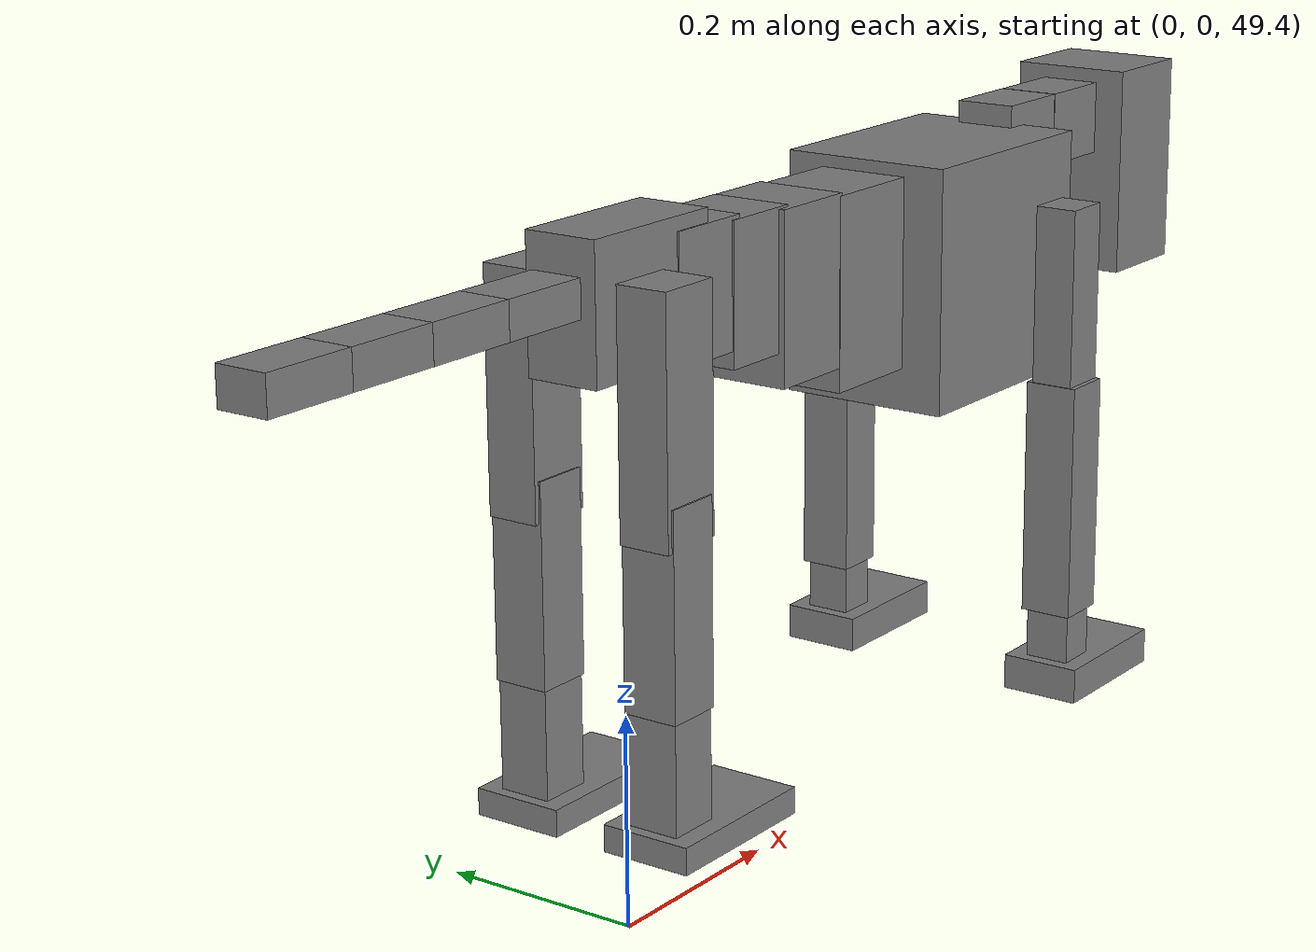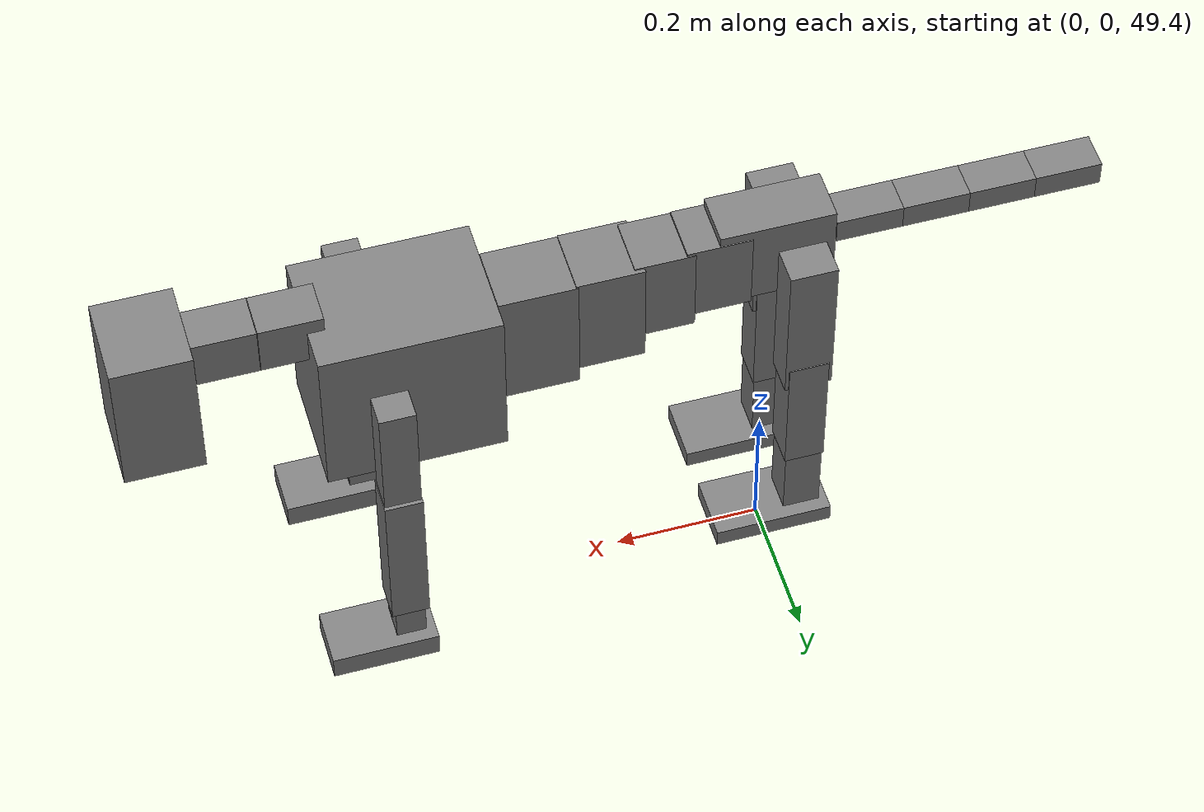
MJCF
<mujoco model="dog">

    <default>
        <joint armature="0.02" stiffness="1" damping="0.2" limited="true"/>
        <geom condim="3" friction="1 0.05 0.05" margin="0.01"/>
        <motor ctrllimited="true" ctrlrange="-1.0 1.0" forcelimited="true" gear="50"/>
    </default>

    <compiler inertiafromgeom="true" angle="radian"/>

    <option timestep="0.016" iterations="50" tolerance="1e-10" solver="Newton" jacobian="dense" cone="pyramidal"/>

    <size nconmax="20000" njmax="60000" nstack="5000000"/>
    <visual>
        <map force="0.1" zfar="30"/>
        <rgba haze="0.15 0.25 0.35 1"/>
        <quality shadowsize="2048"/>
        <global offwidth="800" offheight="800"/>
    </visual>

    <asset>
        <texture type="skybox" builtin="gradient" rgb1="0.3 0.5 0.7" rgb2="0 0 0" width="512" height="512"/>
        <texture name="texplane" type="2d" builtin="checker" rgb1=".2 .3 .4" rgb2=".1 0.15 0.2" width="512" height="512"
                 mark="cross" markrgb=".8 .8 .8"/>
        <texture name="texgeom" type="cube" builtin="flat" mark="cross" width="127" height="1278" rgb1="0.8 0.6 0.4"
                 rgb2="0.8 0.6 0.4" markrgb="1 1 1" random="0.01"/>

        <material name="matplane" reflectance="0.3" texture="texplane" texrepeat="1 1" texuniform="true"/>
        <material name="matgeom" texture="texgeom" texuniform="true" rgba="0.8 0.6 .4 1"/>
    </asset>

    <worldbody>
        <geom name="floor" pos="0 0 0" size="0 0 .25" type="plane" material="matplane" condim="3"/>

        <light directional="false" diffuse=".2 .2 .2" specular="0 0 0" pos="0 0 5" dir="0 0 -1" castshadow="false"/>
        <light mode="targetbodycom" target="torso" directional="false" diffuse=".8 .8 .8" specular="0.3 0.3 0.3"
               pos="0 0 4.0" dir="0 0 -1"/>

        <body name="root" pos="0 0 50">
            <freejoint name="root_1"/>
            <geom type="box" pos="0 0 -0.02" size="0.0774  0.0358  0.063" density="2030"/>

            <body name="spine1" pos="0.054 0 0">
                <joint name="spine1_y" axis="0 1 0" range="0 0.7" limited="true"/>
                <geom type="box" pos="0.02375 0 -0.03" size="0.04375  0.0375  0.05985" density="2030"/>

                <body name="spine2" pos="0.0612 0 0">
                    <joint name="spine2_y" axis="0 1 0" range="-0.15 0.15" limited="true"/>
                    <geom type="box" pos="0.03555  0  -0.04" size="0.04055  0.039  0.06615" density="2030"/>

                    <body name="spine3" pos="0.0730 0 0">
                        <joint name="spine3_y" axis="0 1 0" range="-0.15 0.15" limited="true"/>
                        <geom type="box" pos="0.03555  0  -0.057" size="0.04555  0.0445  0.081" density="2030"/>

                        <body name="spine4" pos="0.0780 0 0">
                            <joint name="spine4_y" axis="0 1 0" range="-0.15 0.15" limited="true"/>
                            <geom type="box" pos="0.05265  0  -0.07" size="0.05265  0.045  0.09135" density="2030"/>

                            <body name="torso" pos="0.1082 0 0">
                                <joint name="torso_y" axis="0 1 0" range="-0.15 0.15" limited="true"/>
                                <geom type="box" pos="0.11925  0  -0.085" size="0.11925  0.085  0.11745"
                                      density="2030"/>

                                <body name="neck1" pos="0.2160  0   0.0180">
                                    <joint name="neck1_y" axis="0 1 0" range="-1.2  -1" limited="true"/>
                                    <geom type="box" pos="0.0423  0  0" size="0.0423  0.03  0.036" density="2325"/>

                                    <body name="neck2" pos="0.0853  0  0">
                                        <joint name="neck2_y" axis="0 1 0" range="0.1  0" limited="true"/>
                                        <geom type="box" pos="0.0423  0  0" size="0.0423  0.03  0.036" density="2325"/>

                                        <body name="head" pos="0.0853  0  0">
                                            <joint name="head_y" axis="0 1 0" range="-0.3  -0.2" limited="true"/>
                                            <geom type="box" pos="0.0531  0  -0.055" size="0.0531  0.06  0.1044"
                                                  density="4030"/>

                                        </body>
                                    </body>
                                </body>

                                <body name="front_shoulder" pos="0.156  0   -0.0480">
                                    <joint name="front_shoulder_y" axis="0 1 0" range="-1 1.5" limited="true"/>
                                    <geom type="box" pos="0 0.13 -0.0732" size="0.0243  0.0207  0.0999" density="1158"/>
                                    <geom type="box" pos="0 -0.13 -0.0732" size="0.0243  0.0207  0.0999"
                                          density="1158"/>

                                    <body name="front_elbow" pos="0  0  -0.1465">
                                        <joint name="front_elbow_y" axis="0 1 0" range="-2 0" limited="true"/>
                                        <geom type="box" pos="0 0.13 -0.1160" size="0.0254  0.0260  0.1160"
                                              density="1081"/>
                                        <geom type="box" pos="0 -0.13 -0.1160" size="0.0254  0.0260  0.1160"
                                              density="1081"/>

                                        <body name="front_wrist" pos="0  0  -0.2321">
                                            <joint name="front_wrist_y" axis="0 1 0" range="-0.2 0" limited="true"/>
                                            <geom type="box" pos="0 0.13 -0.0320" size="0.0201  0.0223  0.0452"
                                                  density="1664"/>
                                            <geom type="box" pos="0 -0.13 -0.0320" size="0.0201  0.0223  0.0452"
                                                  density="1664"/>

                                            <body name="front_finger_end" pos="0  0  -0.0640">
                                                <joint name="front_finger_y" axis="0 1 0" range="-0.4 1"
                                                       limited="true"/>
                                                <geom type="box" pos="0.0394  0.13  -0.0022"
                                                      size="0.0722  0.0394  0.0172" density="1515"/>
                                                <geom type="box" pos="0.0394  -0.13  -0.0022"
                                                      size="0.0722  0.0394  0.0172" density="1515"/>

                                            </body>

                                        </body>
                                    </body>
                                </body>

                            </body>
                        </body>
                    </body>
                </body>
            </body>

            <body name="back_hip" pos="-0.03 0 -0.018">
                <joint name="back_hip_y" axis="0 1 0" range="-1.5 0.3" limited="true"/>
                <geom type="box" pos="0 0.07 -0.0884" size="0.0319  0.0250  0.1112" density="1154"/>
                <geom type="box" pos="0 -0.07 -0.0884" size="0.0319  0.0250  0.1112" density="1154"/>

                <body name="back_knee" pos="0  0  -0.1769">
                    <joint name="back_knee_y" axis="0 1 0" range="0 2.8" limited="true"/>
                    <geom type="box" pos="0 0.07 -0.0792" size="0.0270  0.0267  0.0947" density="1227"/>
                    <geom type="box" pos="0 -0.07 -0.0792" size="0.0270  0.0267  0.0947" density="1227"/>

                    <body name="back_ankle" pos="0  0  -0.1583">
                        <joint name="back_ankle_y" axis="0 1 0" range="-2.2 0" limited="true"/>
                        <geom type="box" pos="0 0.07 -0.0666" size="0.0252  0.0252  0.0778" density="1284"/>
                        <geom type="box" pos="0 -0.07 -0.0666" size="0.0252  0.0252  0.0778" density="1284"/>

                        <body name="back_toe_end" pos="0  0  -0.1331">
                            <joint name="back_toe_y" axis="0 1 0" range="-0.4 1" limited="true"/>
                            <geom type="box" pos="0.0439  0.07  0.0024" size="0.0804  0.0439  0.0126" density="1515"/>
                            <geom type="box" pos="0.0439  -0.07  0.0024" size="0.0804  0.0439  0.0126" density="1515"/>

                        </body>
                    </body>
                </body>
            </body>

            <body name="tail1" pos="-0.074 0 -0.006">
                <joint name="tail1_y" axis="0 1 0" range="-0.2 0.2" limited="true"/>
                <geom type="box" pos="-0.0536  0  0" size="0.045  0.025  0.0175" density="1587"/>

                <body name="tail2" pos="-0.09 0 0">
                    <joint name="tail2_y" axis="0 1 0" range="-0.2 0.2" limited="true"/>
                    <geom type="box" pos="-0.0536  0  0" size="0.045  0.025  0.0175" density="1587"/>

                    <body name="tail3" pos="-0.09 0 0">
                        <joint name="tail3_y" axis="0 1 0" range="-0.2 0.2" limited="true"/>
                        <geom type="box" pos="-0.0536  0  0" size="0.045  0.025  0.0175" density="1587"/>

                        <body name="tail4" pos="-0.09 0 0">
                            <joint name="tail4_y" axis="0 1 0" range="-0.2 0.2" limited="true"/>
                            <geom type="box" pos="-0.0536  0  0" size="0.045  0.025  0.0175" density="1587"/>

                        </body>
                    </body>
                </body>
            </body>
        </body>
    </worldbody>

    <actuator>
        <motor joint="spine1_y" forcerange="-150 150     "/>
        <motor joint="spine2_y" forcerange="-150 150     "/>
        <motor joint="spine3_y" forcerange="-150 150     "/>
        <motor joint="spine4_y" forcerange="-150 150     "/>
        <motor joint="torso_y" forcerange="-150 150     "/>
        <motor joint="neck1_y" forcerange="-100 100       "/>
        <motor joint="neck2_y" forcerange="-100 100       "/>
        <motor joint="head_y" forcerange="-150 150       "/>
        <motor joint="front_shoulder_y" forcerange="-128.57 109.64"/>
        <motor joint="front_elbow_y" forcerange="-168.71 120.07"/>
        <motor joint="front_wrist_y" forcerange="-116.94 61.48"/>
        <motor joint="front_finger_y" forcerange="-85.65 84.43"/>
        <motor joint="back_hip_y" forcerange="-302.83 230.39"/>
        <motor joint="back_knee_y" forcerange="-312.83 274.84"/>
        <motor joint="back_angle_y" forcerange="-125.59 177.27"/>
        <motor joint="back_toe_y" forcerange="-133.29 137.57"/>
        <motor joint="tail1_y" forcerange="-50 50     "/>
        <motor joint="tail2_y" forcerange="-50 50     "/>
        <motor joint="tail3_y" forcerange="-50 50     "/>
        <motor joint="tail4_y" forcerange="-50 50     "/>
    </actuator>
</mujoco>
